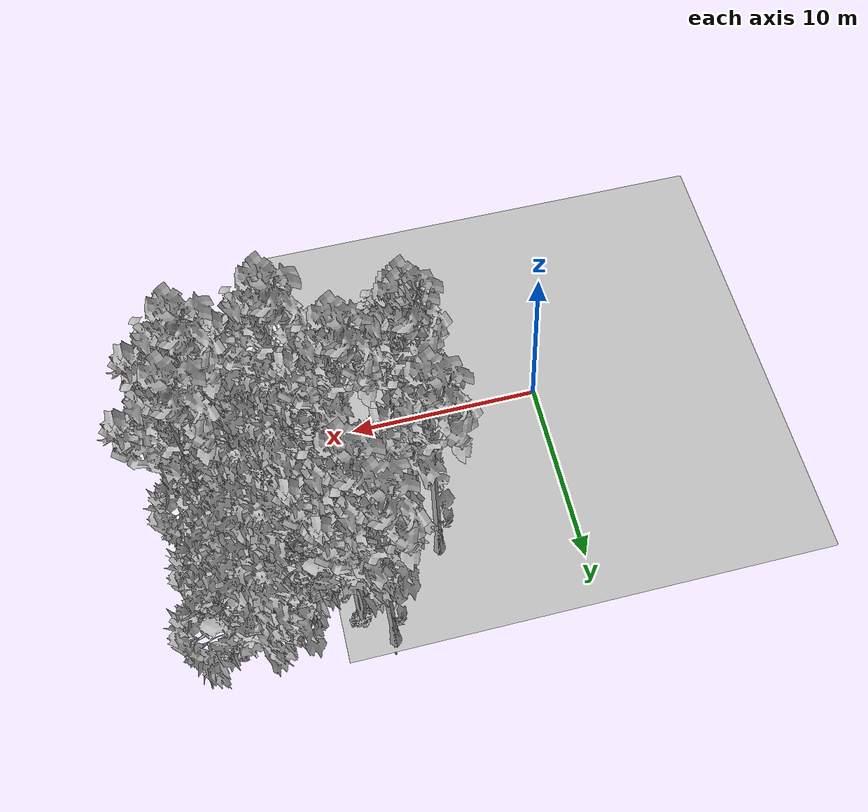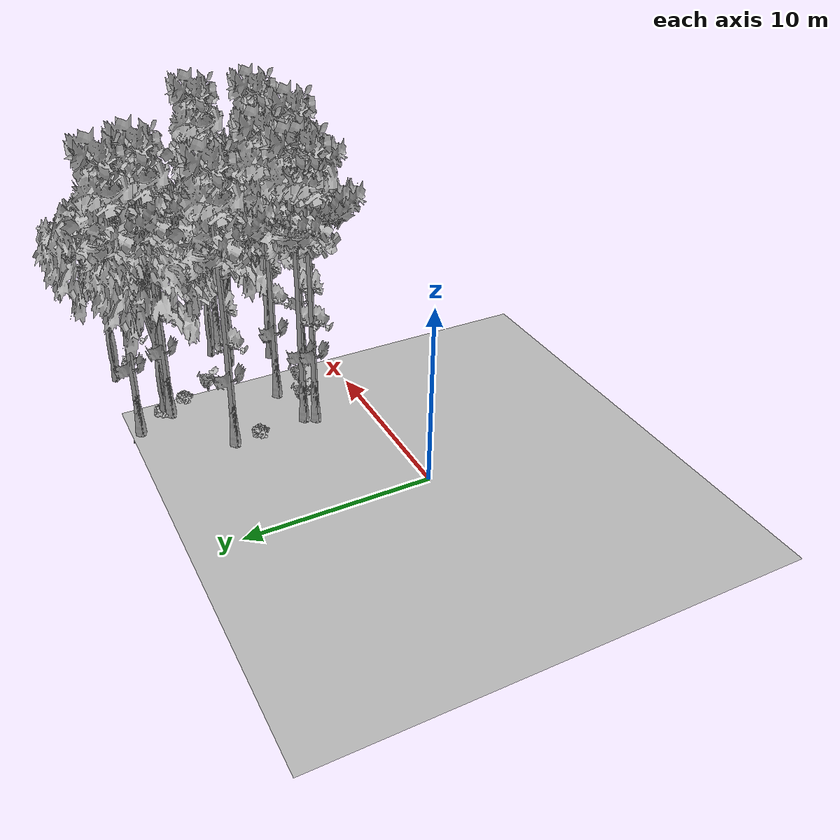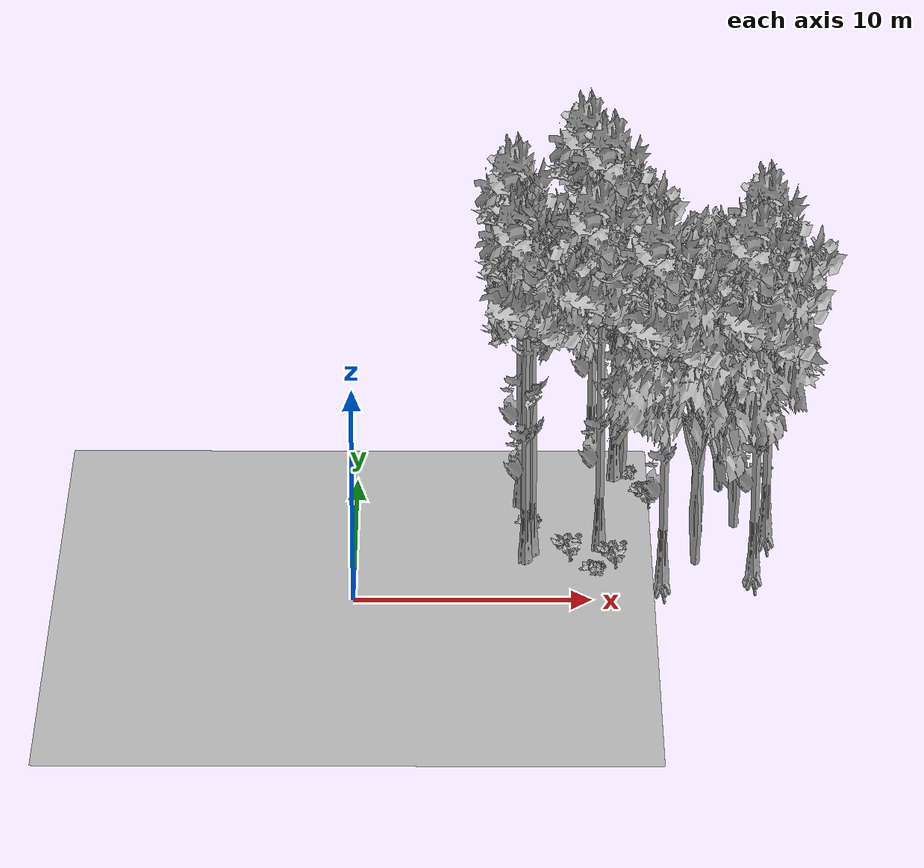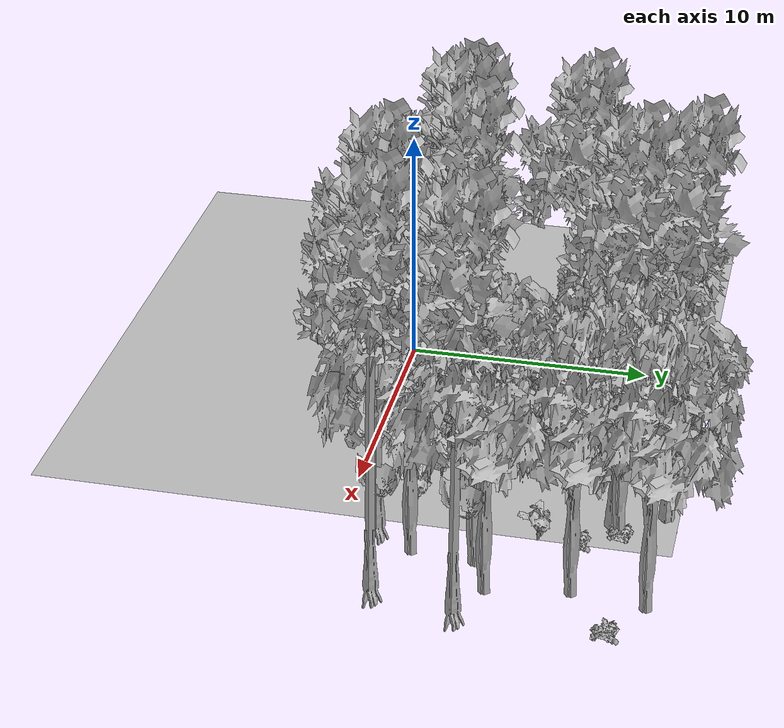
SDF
<sdf version="1.7">
 <world name="default">
  <model name="ground_plane">
   <static>1</static>
   <link name="link">
    <collision name="collision">
     <pose>-50 0 0 0 -0 0</pose>
     <geometry><plane><normal>0 0 1</normal><size>80 80</size></plane></geometry>
     <surface><contact><ode><min_depth>0.01</min_depth><max_vel>0</max_vel></ode></contact></surface>
    </collision>
    <visual name="grass">
     <cast_shadows>0</cast_shadows>
     <geometry>
      <mesh>
       <scale>0.46714285714285714 0.46714285714285714 0.1</scale>
       <uri>file://grass_plane/meshes/grass_plane.dae</uri>
      </mesh>
     </geometry>
    </visual>
   </link>
  </model>
  <model name="Tree 57">
   <static>1</static>
   <pose>7.057571580792327 7.864239401350154 0 1.57079 -0 0</pose>
   <link name="link">
    <collision name="collision">
     <geometry><mesh><scale>3.5 5 3.5</scale><uri>model://tree_9/meshes/tree_9.obj</uri></mesh></geometry>
    </collision>
    <visual name="visual">
     <geometry><mesh><scale>3.5 5 3.5</scale><uri>model://tree_9/meshes/tree_9.obj</uri></mesh></geometry>
    </visual>
   </link>
  </model>
  <model name="Tree 66">
   <static>1</static>
   <pose>15.958893668986306 12.047324292278454 0 1.57079 -0 0</pose>
   <link name="link">
    <collision name="collision">
     <geometry><mesh><scale>3.5 5 3.5</scale><uri>model://tree_2/meshes/tree_2.obj</uri></mesh></geometry>
    </collision>
    <visual name="visual">
     <geometry><mesh><scale>3.5 5 3.5</scale><uri>model://tree_2/meshes/tree_2.obj</uri></mesh></geometry>
    </visual>
   </link>
  </model>
  <model name="Tree 74">
   <static>1</static>
   <pose>17.526371690945403 5.315362097646251 0 1.57079 -0 0</pose>
   <link name="link">
    <collision name="collision">
     <geometry><mesh><scale>3.5 5 3.5</scale><uri>model://tree_9/meshes/tree_9.obj</uri></mesh></geometry>
    </collision>
    <visual name="visual">
     <geometry><mesh><scale>3.5 5 3.5</scale><uri>model://tree_9/meshes/tree_9.obj</uri></mesh></geometry>
    </visual>
   </link>
  </model>
  <model name="Tree 97">
   <static>1</static>
   <pose>12.975221890327575 1.469550661514333 0 1.57079 -0 0</pose>
   <link name="link">
    <collision name="collision">
     <geometry><mesh><scale>3.5 5 3.5</scale><uri>model://tree_9/meshes/tree_9.obj</uri></mesh></geometry>
    </collision>
    <visual name="visual">
     <geometry><mesh><scale>3.5 5 3.5</scale><uri>model://tree_9/meshes/tree_9.obj</uri></mesh></geometry>
    </visual>
   </link>
  </model>
  <model name="Tree 120">
   <static>1</static>
   <pose>15.625203547247267 9.263367697603336 0 1.57079 -0 0</pose>
   <link name="link">
    <collision name="collision">
     <geometry><mesh><scale>3.5 5 3.5</scale><uri>model://tree_2/meshes/tree_2.obj</uri></mesh></geometry>
    </collision>
    <visual name="visual">
     <geometry><mesh><scale>3.5 5 3.5</scale><uri>model://tree_2/meshes/tree_2.obj</uri></mesh></geometry>
    </visual>
   </link>
  </model>
  <model name="Tree 123">
   <static>1</static>
   <pose>7.508981502954754 3.712256848443289 0 1.57079 -0 0</pose>
   <link name="link">
    <collision name="collision">
     <geometry><mesh><scale>3.5 5 3.5</scale><uri>model://tree_9/meshes/tree_9.obj</uri></mesh></geometry>
    </collision>
    <visual name="visual">
     <geometry><mesh><scale>3.5 5 3.5</scale><uri>model://tree_9/meshes/tree_9.obj</uri></mesh></geometry>
    </visual>
   </link>
  </model>
  <model name="Tree 137">
   <static>1</static>
   <pose>16.841542518031353 2.117030122888444 0 1.57079 -0 0</pose>
   <link name="link">
    <collision name="collision">
     <geometry><mesh><scale>3.5 5 3.5</scale><uri>model://tree_9/meshes/tree_9.obj</uri></mesh></geometry>
    </collision>
    <visual name="visual">
     <geometry><mesh><scale>3.5 5 3.5</scale><uri>model://tree_9/meshes/tree_9.obj</uri></mesh></geometry>
    </visual>
   </link>
  </model>
  <model name="Tree 198">
   <static>1</static>
   <pose>10.378973112537587 4.1785284964353195 0 1.57079 -0 0</pose>
   <link name="link">
    <collision name="collision">
     <geometry><mesh><scale>3.5 5 3.5</scale><uri>model://tree_9/meshes/tree_9.obj</uri></mesh></geometry>
    </collision>
    <visual name="visual">
     <geometry><mesh><scale>3.5 5 3.5</scale><uri>model://tree_9/meshes/tree_9.obj</uri></mesh></geometry>
    </visual>
   </link>
  </model>
  <model name="Tree 213">
   <static>1</static>
   <pose>16.136455647628324 6.166992578330849 0 1.57079 -0 0</pose>
   <link name="link">
    <collision name="collision">
     <geometry><mesh><scale>3.5 5 3.5</scale><uri>model://tree_2/meshes/tree_2.obj</uri></mesh></geometry>
    </collision>
    <visual name="visual">
     <geometry><mesh><scale>3.5 5 3.5</scale><uri>model://tree_2/meshes/tree_2.obj</uri></mesh></geometry>
    </visual>
   </link>
  </model>
  <model name="Tree 263">
   <static>1</static>
   <pose>11.436243554799965 10.434343705224407 0 1.57079 -0 0</pose>
   <link name="link">
    <collision name="collision">
     <geometry><mesh><scale>3.5 5 3.5</scale><uri>model://tree_2/meshes/tree_2.obj</uri></mesh></geometry>
    </collision>
    <visual name="visual">
     <geometry><mesh><scale>3.5 5 3.5</scale><uri>model://tree_2/meshes/tree_2.obj</uri></mesh></geometry>
    </visual>
   </link>
  </model>
  <model name="Tree 265">
   <static>1</static>
   <pose>11.166712022172646 10.171726002334736 0 1.57079 -0 0</pose>
   <link name="link">
    <collision name="collision">
     <geometry><mesh><scale>3.5 5 3.5</scale><uri>model://tree_9/meshes/tree_9.obj</uri></mesh></geometry>
    </collision>
    <visual name="visual">
     <geometry><mesh><scale>3.5 5 3.5</scale><uri>model://tree_9/meshes/tree_9.obj</uri></mesh></geometry>
    </visual>
   </link>
  </model>
  <model name="Tree 330">
   <static>1</static>
   <pose>14.347109049232436 3.0544067821671987 0 1.57079 -0 0</pose>
   <link name="link">
    <collision name="collision">
     <geometry><mesh><scale>3.5 5 3.5</scale><uri>model://tree_2/meshes/tree_2.obj</uri></mesh></geometry>
    </collision>
    <visual name="visual">
     <geometry><mesh><scale>3.5 5 3.5</scale><uri>model://tree_2/meshes/tree_2.obj</uri></mesh></geometry>
    </visual>
   </link>
  </model>
  <model name="Tree 509">
   <static>1</static>
   <pose>10.224345670641249 12.119523188951476 0 1.57079 -0 0</pose>
   <link name="link">
    <collision name="collision">
     <geometry><mesh><scale>3.5 5 3.5</scale><uri>model://tree_9/meshes/tree_9.obj</uri></mesh></geometry>
    </collision>
    <visual name="visual">
     <geometry><mesh><scale>3.5 5 3.5</scale><uri>model://tree_9/meshes/tree_9.obj</uri></mesh></geometry>
    </visual>
   </link>
  </model>
  <model name="Tree 524">
   <static>1</static>
   <pose>7.223679013549344 3.1353665153801487 0 1.57079 -0 0</pose>
   <link name="link">
    <collision name="collision">
     <geometry><mesh><scale>3.5 5 3.5</scale><uri>model://tree_9/meshes/tree_9.obj</uri></mesh></geometry>
    </collision>
    <visual name="visual">
     <geometry><mesh><scale>3.5 5 3.5</scale><uri>model://tree_9/meshes/tree_9.obj</uri></mesh></geometry>
    </visual>
   </link>
  </model>
  <model name="Tree 546">
   <static>1</static>
   <pose>14.537077459241154 5.485359443563773 0 1.57079 -0 0</pose>
   <link name="link">
    <collision name="collision">
     <geometry><mesh><scale>3.5 5 3.5</scale><uri>model://tree_2/meshes/tree_2.obj</uri></mesh></geometry>
    </collision>
    <visual name="visual">
     <geometry><mesh><scale>3.5 5 3.5</scale><uri>model://tree_2/meshes/tree_2.obj</uri></mesh></geometry>
    </visual>
   </link>
  </model>
  <model name="Bush 17">
   <static>1</static>
   <pose>7.430880148336023 6.288293618052521 0 1.57079 -0 0</pose>
   <link name="link">
    <collision name="collision">
     <geometry><mesh><scale>2 2 2</scale><uri>model://bush_2/meshes/bush_2.obj</uri></mesh></geometry>
     <surface><contact><collide_without_contact>false</collide_without_contact></contact></surface>
    </collision>
    <visual name="visual">
     <geometry><mesh><scale>2 2 2</scale><uri>model://bush_2/meshes/bush_2.obj</uri></mesh></geometry>
    </visual>
   </link>
  </model>
  <model name="Bush 110">
   <static>1</static>
   <pose>11.64450933332094 10.550244680396318 0 1.57079 -0 0</pose>
   <link name="link">
    <collision name="collision">
     <geometry><mesh><scale>2 2 2</scale><uri>model://bush_2/meshes/bush_2.obj</uri></mesh></geometry>
     <surface><contact><collide_without_contact>false</collide_without_contact></contact></surface>
    </collision>
    <visual name="visual">
     <geometry><mesh><scale>2 2 2</scale><uri>model://bush_2/meshes/bush_2.obj</uri></mesh></geometry>
    </visual>
   </link>
  </model>
  <model name="Bush 289">
   <static>1</static>
   <pose>17.644692203292557 10.832031875757735 0 1.57079 -0 0</pose>
   <link name="link">
    <collision name="collision">
     <geometry><mesh><scale>2 2 2</scale><uri>model://bush_2/meshes/bush_2.obj</uri></mesh></geometry>
     <surface><contact><collide_without_contact>false</collide_without_contact></contact></surface>
    </collision>
    <visual name="visual">
     <geometry><mesh><scale>2 2 2</scale><uri>model://bush_2/meshes/bush_2.obj</uri></mesh></geometry>
    </visual>
   </link>
  </model>
  <model name="Bush 349">
   <static>1</static>
   <pose>9.148112727549027 3.1556320947986123 0 1.57079 -0 0</pose>
   <link name="link">
    <collision name="collision">
     <geometry><mesh><scale>2 2 2</scale><uri>model://bush_0/meshes/bush_0.obj</uri></mesh></geometry>
     <surface><contact><collide_without_contact>false</collide_without_contact></contact></surface>
    </collision>
    <visual name="visual">
     <geometry><mesh><scale>2 2 2</scale><uri>model://bush_0/meshes/bush_0.obj</uri></mesh></geometry>
    </visual>
   </link>
  </model>
  <model name="Bush 368">
   <static>1</static>
   <pose>11.042643758090563 2.5706287351395787 0 1.57079 -0 0</pose>
   <link name="link">
    <collision name="collision">
     <geometry><mesh><scale>2 2 2</scale><uri>model://bush_0/meshes/bush_0.obj</uri></mesh></geometry>
     <surface><contact><collide_without_contact>false</collide_without_contact></contact></surface>
    </collision>
    <visual name="visual">
     <geometry><mesh><scale>2 2 2</scale><uri>model://bush_0/meshes/bush_0.obj</uri></mesh></geometry>
    </visual>
   </link>
  </model>
  <model name="Bush 405">
   <static>1</static>
   <pose>12.602842169229525 7.57231201675603 0 1.57079 -0 0</pose>
   <link name="link">
    <collision name="collision">
     <geometry><mesh><scale>2 2 2</scale><uri>model://bush_0/meshes/bush_0.obj</uri></mesh></geometry>
     <surface><contact><collide_without_contact>false</collide_without_contact></contact></surface>
    </collision>
    <visual name="visual">
     <geometry><mesh><scale>2 2 2</scale><uri>model://bush_0/meshes/bush_0.obj</uri></mesh></geometry>
    </visual>
   </link>
  </model>
  <model name="Bush 524">
   <static>1</static>
   <pose>10.112409957293643 2.415188335511914 0 1.57079 -0 0</pose>
   <link name="link">
    <collision name="collision">
     <geometry><mesh><scale>2 2 2</scale><uri>model://bush_2/meshes/bush_2.obj</uri></mesh></geometry>
     <surface><contact><collide_without_contact>false</collide_without_contact></contact></surface>
    </collision>
    <visual name="visual">
     <geometry><mesh><scale>2 2 2</scale><uri>model://bush_2/meshes/bush_2.obj</uri></mesh></geometry>
    </visual>
   </link>
  </model>
  <model name="Bush 544">
   <static>1</static>
   <pose>12.389002880575916 9.029514166385574 0 1.57079 -0 0</pose>
   <link name="link">
    <collision name="collision">
     <geometry><mesh><scale>2 2 2</scale><uri>model://bush_2/meshes/bush_2.obj</uri></mesh></geometry>
     <surface><contact><collide_without_contact>false</collide_without_contact></contact></surface>
    </collision>
    <visual name="visual">
     <geometry><mesh><scale>2 2 2</scale><uri>model://bush_2/meshes/bush_2.obj</uri></mesh></geometry>
    </visual>
   </link>
  </model>
 </world>
</sdf>
